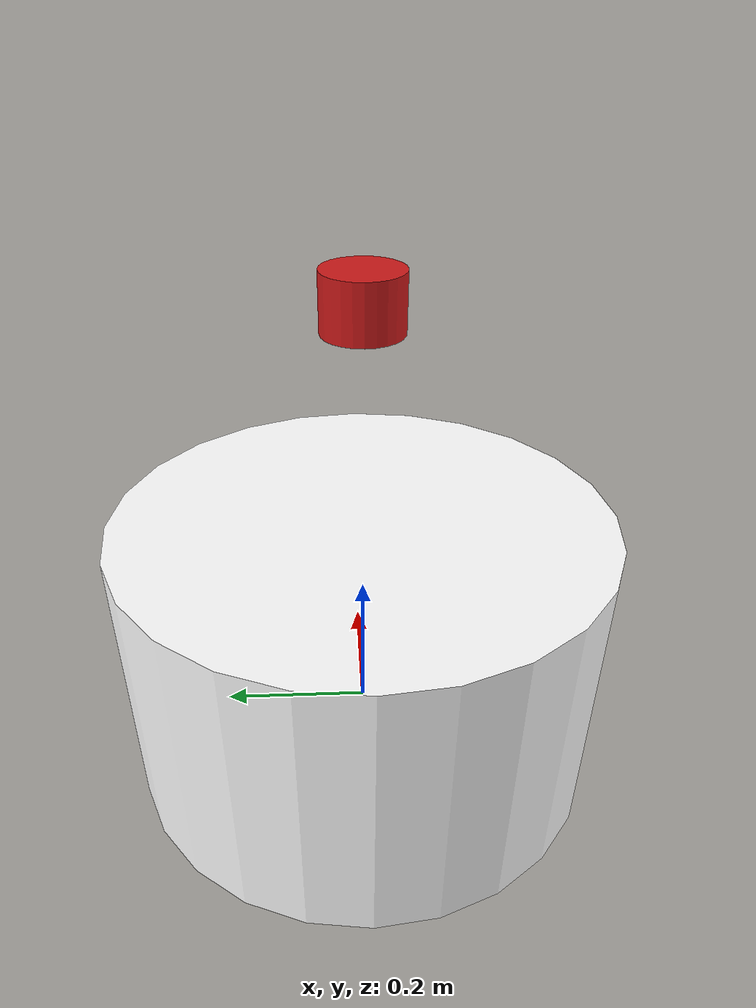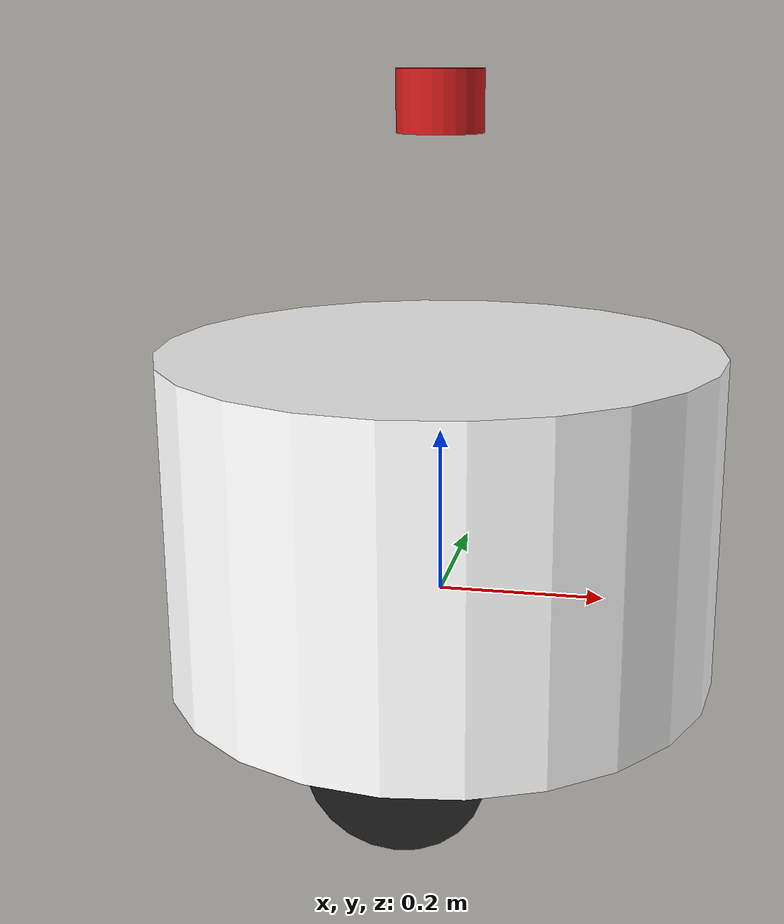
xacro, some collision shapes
<?xml version="1.0"?>
<robot xmlns:xacro="http://www.ros.org/wiki/xacro" name="mobile_robot">

  <!-- Include Gazebo properties -->
  <xacro:include filename="$(find robot_description)/urdf/robot.gazebo.xacro" />

  <!-- Define constants -->
  <!-- Octagon: 255mm per side, circumradius = 0.255 / (2*sin(pi/8)) = 0.3332m -->
  <!-- Width across flats = 0.255 * (1 + sqrt(2)) = 0.6156m -->
  <xacro:property name="octagon_side" value="0.255"/>
  <xacro:property name="octagon_circumradius" value="0.3332"/>
  <xacro:property name="base_width" value="0.6156"/>
  <xacro:property name="base_length" value="0.6156"/>
  <xacro:property name="base_height" value="0.40"/>
  <xacro:property name="base_mass" value="10.0"/>

  <xacro:property name="wheel_radius" value="0.10"/>
  <xacro:property name="wheel_width" value="0.05"/>
  <xacro:property name="wheel_mass" value="2.0"/>
  <xacro:property name="wheel_separation" value="0.488"/>

  <xacro:property name="caster_radius" value="0.10"/>
  <xacro:property name="caster_mass" value="0.5"/>
  <xacro:property name="caster_x_offset" value="0.20"/>

  <!-- Center of mass offset: d/3 from wheels axis toward caster -->
  <!-- This is the optimal position for differential drive robots -->
  <xacro:property name="com_x_offset" value="${caster_x_offset / 3.0}"/>

  <!-- Define inertial macro for box -->
  <xacro:macro name="box_inertia" params="m w h d">
    <inertial>
      <origin xyz="${com_x_offset} 0 0" rpy="0 0 0"/>
      <mass value="${m}"/>
      <inertia ixx="${(m/12) * (h*h + d*d)}" ixy="0.0" ixz="0.0"
               iyy="${(m/12) * (w*w + d*d)}" iyz="0.0"
               izz="${(m/12) * (w*w + h*h)}"/>
    </inertial>
  </xacro:macro>

  <!-- Define inertial macro for cylinder -->
  <xacro:macro name="cylinder_inertia" params="m r h">
    <inertial>
      <origin xyz="0 0 0" rpy="0 0 0"/>
      <mass value="${m}"/>
      <inertia ixx="${(m/12) * (3*r*r + h*h)}" ixy="0.0" ixz="0.0"
               iyy="${(m/12) * (3*r*r + h*h)}" iyz="0.0"
               izz="${(m/2) * r*r}"/>
    </inertial>
  </xacro:macro>

  <!-- Define inertial macro for sphere -->
  <xacro:macro name="sphere_inertia" params="m r">
    <inertial>
      <origin xyz="0 0 0" rpy="0 0 0"/>
      <mass value="${m}"/>
      <inertia ixx="${(2/5) * m * r * r}" ixy="0.0" ixz="0.0"
               iyy="${(2/5) * m * r * r}" iyz="0.0"
               izz="${(2/5) * m * r * r}"/>
    </inertial>
  </xacro:macro>

  <!-- Base footprint (virtual link on the ground) -->
  <link name="base_footprint"/>

  <!-- Base link (main chassis - octagon with 255mm sides) -->
  <link name="base_link">
    <visual>
      <origin xyz="0 0 0" rpy="0 0 0"/>
      <geometry>
        <mesh filename="package://robot_description/meshes/octagon_base.stl"/>
      </geometry>
      <material name="white">
        <color rgba="1.0 1.0 1.0 1.0"/>
      </material>
    </visual>
    <collision>
      <origin xyz="0 0 0" rpy="0 0 0"/>
      <geometry>
        <!-- Use cylinder for collision to avoid Gazebo mesh physics instabilities -->
        <cylinder radius="${octagon_circumradius}" length="${base_height}"/>
      </geometry>
    </collision>
    <!-- Approximate inertia using bounding box -->
    <xacro:box_inertia m="${base_mass}" w="${base_width}" h="${base_height}" d="${base_length}"/>
  </link>

  <!-- Joint connecting base_footprint to base_link -->
  <joint name="base_joint" type="fixed">
    <parent link="base_footprint"/>
    <child link="base_link"/>
    <origin xyz="0 0 ${wheel_radius}" rpy="0 0 0"/>
  </joint>

  <!-- Wheel macro -->
  <xacro:macro name="wheel" params="prefix reflect">
    <link name="${prefix}_wheel">
      <visual>
        <origin xyz="0 0 0" rpy="${pi/2} 0 0"/>
        <geometry>
          <cylinder radius="${wheel_radius}" length="${wheel_width}"/>
        </geometry>
        <material name="black">
          <color rgba="0.1 0.1 0.1 1.0"/>
        </material>
      </visual>
      <collision>
        <origin xyz="0 0 0" rpy="${pi/2} 0 0"/>
        <geometry>
          <cylinder radius="${wheel_radius}" length="${wheel_width}"/>
        </geometry>
      </collision>
      <xacro:cylinder_inertia m="${wheel_mass}" r="${wheel_radius}" h="${wheel_width}"/>
    </link>

    <joint name="${prefix}_wheel_joint" type="continuous">
      <parent link="base_link"/>
      <child link="${prefix}_wheel"/>
      <origin xyz="0 ${reflect * wheel_separation/2} ${-base_height/2}" rpy="0 0 0"/>
      <axis xyz="0 1 0"/>
      <dynamics damping="0.1" friction="0.1"/>
    </joint>
  </xacro:macro>

  <!-- Left and right wheels -->
  <xacro:wheel prefix="left" reflect="1"/>
  <xacro:wheel prefix="right" reflect="-1"/>

  <!-- Caster wheel (passive sphere) -->
  <link name="caster_wheel">
    <visual>
      <origin xyz="0 0 0" rpy="0 0 0"/>
      <geometry>
        <sphere radius="${caster_radius}"/>
      </geometry>
      <material name="gray">
        <color rgba="0.5 0.5 0.5 1.0"/>
      </material>
    </visual>
    <collision>
      <origin xyz="0 0 0" rpy="0 0 0"/>
      <geometry>
        <sphere radius="${caster_radius}"/>
      </geometry>
    </collision>
    <xacro:sphere_inertia m="${caster_mass}" r="${caster_radius}"/>
  </link>

  <joint name="caster_wheel_joint" type="fixed">
    <parent link="base_link"/>
    <child link="caster_wheel"/>
    <origin xyz="${caster_x_offset} 0 ${-base_height/2}" rpy="0 0 0"/>
  </joint>

  <!-- LiDAR Sensor -->
  <xacro:property name="lidar_radius" value="0.05"/>
  <xacro:property name="lidar_height" value="0.07"/>
  <xacro:property name="lidar_mass" value="0.2"/>

  <link name="lidar_link">
    <visual>
      <origin xyz="0 0 0" rpy="0 0 0"/>
      <geometry>
        <cylinder radius="${lidar_radius}" length="${lidar_height}"/>
      </geometry>
      <material name="red">
        <color rgba="0.8 0.1 0.1 1.0"/>
      </material>
    </visual>
    <!-- Collision disabled to prevent LiDAR from detecting itself -->
    <xacro:cylinder_inertia m="${lidar_mass}" r="${lidar_radius}" h="${lidar_height}"/>
  </link>

    <!-- LiDAR at 582mm from ground. base_link origin at wheel_radius (100mm) from ground.
      So lidar_link z = 0.582 - wheel_radius = 0.482m above base_link origin -->
    <xacro:property name="lidar_z_from_base" value="${0.582 - wheel_radius}"/>

  <joint name="lidar_joint" type="fixed">
    <parent link="base_link"/>
    <child link="lidar_link"/>
    <origin xyz="0 0 ${lidar_z_from_base}" rpy="0 0 0"/>
  </joint>

</robot>
